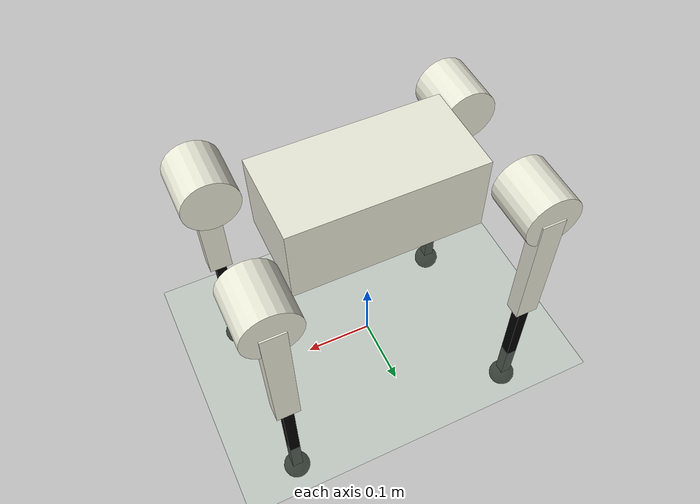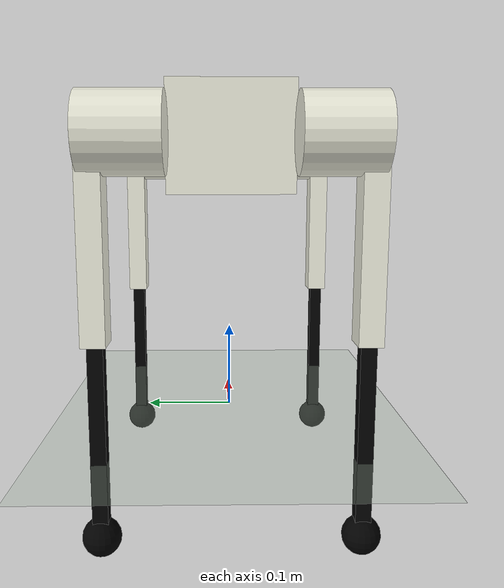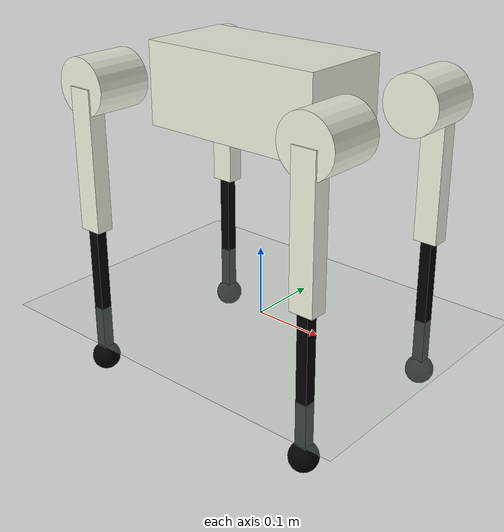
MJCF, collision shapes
<mujoco model="a1_description">
    <compiler angle="radian" meshdir="meshes/" autolimits="true"/>
    <size njmax="500" nconmax="100" />
    <option gravity='0 0 -9.806' iterations='50' solver='Newton' timestep='0.002'/>

    <default>
        <geom contype="1" conaffinity="1" friction="0.6 0.3 0.3" rgba="0.5 0.6 0.7 1" margin="0.001" group="0"/>

        <light castshadow="false" diffuse="1 1 1"/>
        <camera fovy="60"/>
        <joint damping="0.01" armature="0.01" frictionloss="0.2" />
        <default class="a1">
          <geom friction="0.6" margin="0.001"/>
          <joint axis="0 1 0" damping="2" armature="0.01" frictionloss="0.2"/>
          <position kp="100" forcerange="-33.5 33.5"/>
          <default class="abduction">
            <joint pos="0 0 0" axis="1 0 0" limited="true" range="-0.802851 0.802851" damping="1"/>
            <position ctrlrange="-0.802851 0.802851"/>
          </default>
          <default class="hip">
            <joint pos="0 0 0" axis="0 1 0" limited="true" range="-1.0472 4.18879"/>
            <position ctrlrange="-1.0472 4.18879"/>
          </default>
          <default class="knee">
            <joint pos="0 0 0" axis="0 1 0" limited="true" range="-2.69653 -0.916298" />
            <position ctrlrange="-2.69653 -0.916298"/>
          </default>
          <default class="visual">
            <geom type="mesh" contype="0" conaffinity="0" group="2" material="dark"/>
          </default>
          <default class="collision">
            <geom group="3" type="capsule"/>
            <default class="hip_left">
              <geom size="0.04 0.04" quat="1 1 0 0" type="cylinder" pos="0 0.055 0"/>
            </default>
            <default class="hip_right">
              <geom size="0.04 0.04" quat="1 1 0 0" type="cylinder" pos="0 -0.055 0"/>
            </default>
            <default class="thigh1">
              <geom size="0.015" fromto="-0.02 0 0 -0.02 0 -0.16"/>
            </default>
            <default class="thigh2">
              <geom size="0.015" fromto="0 0 0 -0.02 0 -0.1"/>
            </default>
            <default class="thigh3">
              <geom size="0.015" fromto="-0.02 0 -0.16 0 0 -0.2"/>
            </default>
            <default class="calf1">
              <geom size="0.01" fromto="0 0 0 0.02 0 -0.13"/>
            </default>
            <default class="calf2">
              <geom size="0.01" fromto="0.02 0 -0.13 0 0 -0.2"/>
            </default>
            <default class="foot">
              <geom type="sphere" size="0.02" pos="0 0 -0.2" priority="1" solimp="0.015 1 0.031"
                  condim="6" friction="0.8 0.02 0.01"/>
            </default>
          </default>
        </default>

    </default>

    <asset>
        <mesh name="trunk" file="trunk.stl" />
        <mesh name="hip" file="hip.stl" />
        <mesh name="thigh_mirror" file="thigh_mirror.stl" />
        <mesh name="calf" file="calf.stl" />
        <mesh name="thigh" file="thigh.stl" />
    </asset>

    <asset>
        <texture name="texplane" type="2d" builtin="checker" rgb1=".2 .3 .4" rgb2=".1 0.15 0.2" width="100" height="100"></texture>
        <material name="MatPlane" reflectance="0.5" texture="texplane" texrepeat="1 1" texuniform="true"></material>
        <texture type="skybox" builtin="gradient" rgb1="1.0 1.0 1.0" rgb2="1.0 1.0 1.0" width="512" height="512"/>
        <texture name="plane" type="2d" builtin="flat" rgb1="1 1 1" rgb2="1 1 1" width="512" height="512" mark="cross" markrgb="0 0 0"/>
        <material name="plane" reflectance="0.0" texture="plane" texrepeat="3 3" texuniform="true"/>
    </asset>

    <visual>
        <rgba com="0.502 1.0 0 0.5" contactforce="0.98 0.4 0.4 0.7" contactpoint="1.0 1.0 0.6 0.4"/>
        <scale com="0.2" forcewidth="0.035" contactwidth="0.10" contactheight="0.04"/>
    </visual>

    <worldbody>
        <light directional="true" diffuse=".8 .8 .8" pos="0 0 10" dir="0 0 -10"/>
        <camera name="track" mode="trackcom" pos="0 -1.3 1.6" xyaxes="1 0 0 0 0.707 0.707"/>
        <geom name="floor" pos="0 0 0" size="100 100 0.125" type="plane" material="MatPlane" condim="3" rgba="0.8 0.9 0.8 1"></geom>

        <body name="trunk" pos="0 0 0.32">
            <inertial pos="0.0127283 0.00218554 0.000514891" quat="0.00186575 0.711506 0.000389649 0.702677" mass="4.714" diaginertia="0.0648213 0.0565803 0.0169323" />
            <joint name="trunk_tx" type="slide" pos="0 0 0" axis="       1        0        0" limited="false" range="-500        500" ref="0" armature="0" damping="0" stiffness="0"></joint>
            <joint name="trunk_tz" type="slide" pos="0 0 0" axis="       0        0        1" limited="false" range="-300        300" ref="0" armature="0" damping="0" stiffness="0"></joint>
            <joint name="trunk_ty" type="slide" pos="0 0 0" axis="       0        1        0" limited="false" range="-100        200" ref="0" armature="0" damping="0" stiffness="0"></joint>
            <joint name="trunk_tilt" type="hinge" pos="0 0 0" axis="       0        0        1" limited="false" range=" -1.5708   1.5708" ref="0" armature="0" damping="0" stiffness="0"></joint>
            <joint name="trunk_list" type="hinge" pos="0 0 0" axis="       1        0        0" limited="false" range=" -1.5708   1.5708" ref="0" armature="0" damping="0" stiffness="0"></joint>
            <joint name="trunk_rotation" type="hinge" pos="0 0 0" axis="       0        1        0" limited="false" range=" -1.5708   1.5708" ref="0" armature="0" damping="0" stiffness="0"></joint>

            <geom type="mesh" contype="0" conaffinity="0" group="1" rgba="0.913725 0.913725 0.847059 1" mesh="trunk" />
            <geom size="0.1335 0.066 0.057" type="box" rgba="0.913725 0.913725 0.847059 0" />
            <geom size="0.0005 0.0005 0.0005" type="box" contype="0" conaffinity="0" group="1" rgba="0.8 0 0 0" />
            <geom size="0.0005 0.0005 0.0005" type="box" rgba="0.8 0 0 0" />
            <site name="imu" pos="0 0 0"/>
            <body name="imu_link">
                <inertial pos="0 0 0" mass="0.001"/>
                <body name="FR_hip" pos="0.183 -0.047 0">
                    <inertial pos="-0.003311 -0.000635 3.1e-05" quat="0.507528 0.506268 0.491507 0.494499" mass="0.697" diaginertia="0.000807752 0.00055293 0.000468983" />
                    <joint name="FR_hip_joint" class="abduction"/>
                    <geom quat="0 1 0 0" type="mesh" contype="0" conaffinity="0" group="1" rgba="0.913725 0.913725 0.847059 1" mesh="hip" />
                    <geom size="0.04 0.04" pos="0 -0.055 0" quat="0.707107 0.707107 0 0" type="cylinder" rgba="0.913725 0.913725 0.847059 0" />
                    <body name="FR_thigh" pos="0 -0.08505 0">
                        <inertial pos="-0.003237 0.022327 -0.027326" quat="0.999125 -0.00256393 -0.0409531 -0.00806091" mass="1.013" diaginertia="0.00555739 0.00513936 0.00133944" />
                        <joint name="FR_thigh_joint" class="hip"/>
                        <geom type="mesh" contype="0" conaffinity="0" group="1" rgba="0.913725 0.913725 0.847059 1" mesh="thigh_mirror" />
                        <geom size="0.1 0.01225 0.017" pos="0 0 -0.1" quat="0.707107 0 0.707107 0" type="box" rgba="0.913725 0.913725 0.847059 0" />
                        <body name="FR_calf" pos="0 0 -0.2">
                            <inertial pos="0.006435 0.0 -0.107388" quat="0.706886 0.017653 0.017653 0.706886" mass="0.166" diaginertia="0.00340344 0.00339393 3.54834e-05" />
                            <joint name="FR_calf_joint" class="knee"/>
                            <geom type="mesh" contype="0" conaffinity="0" group="1" rgba="0 0 0 1" mesh="calf" />
                            <geom size="0.1 0.008 0.008" pos="0 0 -0.1" quat="0.707107 0 0.707107 0" type="box" rgba="0 0 0 0" />
                            <geom size="0.01" pos="0 0 -0.2" contype="0" conaffinity="0" group="1" rgba="0 0 0 1" />
                            <geom size="0.02" pos="0 0 -0.2" rgba="0 0 0 1" />
                            <body name="FR_toe" pos="0 0 -0.3">
                                <inertial mass="0.06" pos="0 0 0"/>
                            </body>
                        </body>
                    </body>
                </body>
                <body name="FL_hip" pos="0.183 0.047 0">
                    <inertial pos="-0.003311 0.000635 3.1e-05" quat="0.494499 0.491507 0.506268 0.507528" mass="0.697" diaginertia="0.000807752 0.00055293 0.000468983" />
                    <joint name="FL_hip_joint" class="abduction"/>
                    <geom type="mesh" contype="0" conaffinity="0" group="1" rgba="0.913725 0.913725 0.847059 1" mesh="hip" />
                    <geom size="0.04 0.04" pos="0 0.055 0" quat="0.707107 0.707107 0 0" type="cylinder" rgba="0.913725 0.913725 0.847059 0" />
                    <body name="FL_thigh" pos="0 0.08505 0">
                        <inertial pos="-0.003237 -0.022327 -0.027326" quat="0.999125 0.00256393 -0.0409531 0.00806091" mass="1.013" diaginertia="0.00555739 0.00513936 0.00133944" />
                        <joint name="FL_thigh_joint" class="hip" />
                        <geom type="mesh" contype="0" conaffinity="0" group="1" rgba="0.913725 0.913725 0.847059 1" mesh="thigh" />
                        <geom size="0.1 0.01225 0.017" pos="0 0 -0.1" quat="0.707107 0 0.707107 0" type="box" rgba="0.913725 0.913725 0.847059 0" />
                        <body name="FL_calf" pos="0 0 -0.2">
                            <inertial pos="0.006435 0.0 -0.107388" quat="0.706886 0.017653 0.017653 0.706886" mass="0.166" diaginertia="0.00340344 0.00339393 3.54834e-05" />
                            <joint name="FL_calf_joint" class="knee" />
                            <geom type="mesh" contype="0" conaffinity="0" group="1" rgba="0 0 0 1" mesh="calf" />
                            <geom size="0.1 0.008 0.008" pos="0 0 -0.1" quat="0.707107 0 0.707107 0" type="box" rgba="0 0 0 0" />
                            <geom size="0.01" pos="0 0 -0.2" contype="0" conaffinity="0" group="1" rgba="0 0 0 1" />
                            <geom size="0.02" pos="0 0 -0.2" rgba="0 0 0 1" />
                            <body name="FL_toe" pos="0 0 -0.3">
                                <inertial mass="0.06" pos="0 0 0"/>
                            </body>
                        </body>
                    </body>
                </body>
                <body name="RR_hip" pos="-0.183 -0.047 0">
                    <inertial pos="0.003311 -0.000635 3.1e-05" quat="0.491507 0.494499 0.507528 0.506268" mass="0.697" diaginertia="0.000807752 0.00055293 0.000468983" />
                    <joint name="RR_hip_joint" class="abduction" />
                    <geom quat="0 0 0 -1" type="mesh" contype="0" conaffinity="0" group="1" rgba="0.913725 0.913725 0.847059 1" mesh="hip" />
                    <geom size="0.04 0.04" pos="0 -0.055 0" quat="0.707107 0.707107 0 0" type="cylinder" rgba="0.913725 0.913725 0.847059 0" />
                    <body name="RR_thigh" pos="0 -0.08505 0">
                        <inertial pos="-0.003237 0.022327 -0.027326" quat="0.999125 -0.00256393 -0.0409531 -0.00806091" mass="1.013" diaginertia="0.00555739 0.00513936 0.00133944" />
                        <joint name="RR_thigh_joint" class="hip" />
                        <geom type="mesh" contype="0" conaffinity="0" group="1" rgba="0.913725 0.913725 0.847059 1" mesh="thigh_mirror" />
                        <geom size="0.1 0.01225 0.017" pos="0 0 -0.1" quat="0.707107 0 0.707107 0" type="box" rgba="0.913725 0.913725 0.847059 0" />
                        <body name="RR_calf" pos="0 0 -0.2">
                            <inertial pos="0.006435 0.0 -0.107388" quat="0.706886 0.017653 0.017653 0.706886" mass="0.166" diaginertia="0.00340344 0.00339393 3.54834e-05" />
                            <joint name="RR_calf_joint" class="knee" />
                            <geom type="mesh" contype="0" conaffinity="0" group="1" rgba="0 0 0 1" mesh="calf" />
                            <geom size="0.1 0.008 0.008" pos="0 0 -0.1" quat="0.707107 0 0.707107 0" type="box" rgba="0 0 0 0" />
                            <geom size="0.01" pos="0 0 -0.2" contype="0" conaffinity="0" group="1" rgba="0 0 0 1" />
                            <geom size="0.02" pos="0 0 -0.2" rgba="0 0 0 1" />
                            <body name="RR_toe" pos="0 0 -0.3">
                                <inertial mass="0.06" pos="0 0 0"/>
                            </body>
                        </body>
                    </body>
                </body>
                <body name="RL_hip" pos="-0.183 0.047 0">
                    <inertial pos="0.003311 0.000635 3.1e-05" quat="0.506268 0.507528 0.494499 0.491507" mass="0.697" diaginertia="0.000807752 0.00055293 0.000468983" />
                    <joint name="RL_hip_joint" class="abduction" />
                    <geom quat="0 0 1 0" type="mesh" contype="0" conaffinity="0" group="1" rgba="0.913725 0.913725 0.847059 1" mesh="hip" />
                    <geom size="0.04 0.04" pos="0 0.055 0" quat="0.707107 0.707107 0 0" type="cylinder" rgba="0.913725 0.913725 0.847059 0" />
                    <body name="RL_thigh" pos="0 0.08505 0">
                        <inertial pos="-0.003237 -0.022327 -0.027326" quat="0.999125 0.00256393 -0.0409531 0.00806091" mass="1.013" diaginertia="0.00555739 0.00513936 0.00133944" />
                        <joint name="RL_thigh_joint" class="hip" />
                        <geom type="mesh" contype="0" conaffinity="0" group="1" rgba="0.913725 0.913725 0.847059 1" mesh="thigh" />
                        <geom size="0.1 0.01225 0.017" pos="0 0 -0.1" quat="0.707107 0 0.707107 0" type="box" rgba="0.913725 0.913725 0.847059 0" />
                        <body name="RL_calf" pos="0 0 -0.2">
                            <inertial pos="0.006435 0.0 -0.107388" quat="0.706886 0.017653 0.017653 0.706886" mass="0.166" diaginertia="0.00340344 0.00339393 3.54834e-05" />
                            <joint name="RL_calf_joint" class="knee" />
                            <geom type="mesh" contype="0" conaffinity="0" group="1" rgba="0 0 0 1" mesh="calf" />
                            <geom size="0.1 0.008 0.008" pos="0 0 -0.1" quat="0.707107 0 0.707107 0" type="box" rgba="0 0 0 0" />
                            <geom size="0.01" pos="0 0 -0.2" contype="0" conaffinity="0" group="1" rgba="0 0 0 1" />
                            <geom size="0.02" pos="0 0 -0.2" rgba="0 0 0 1" />
                            <body name="RL_toe" pos="0 0 -0.3">
                                <inertial mass="0.06" pos="0 0 0"/>
                            </body>
                        </body>
                    </body>
                </body>
            </body>
        </body>
    </worldbody>
    <actuator>
        <position class="abduction" name="FR_hip" joint="FR_hip_joint"/>
        <position class="hip" name="FR_thigh" joint="FR_thigh_joint"/>
        <position class="knee" name="FR_calf" joint="FR_calf_joint"/>
        <position class="abduction" name="FL_hip" joint="FL_hip_joint"/>
        <position class="hip" name="FL_thigh" joint="FL_thigh_joint"/>
        <position class="knee" name="FL_calf" joint="FL_calf_joint"/>
        <position class="abduction" name="RR_hip" joint="RR_hip_joint"/>
        <position class="hip" name="RR_thigh" joint="RR_thigh_joint"/>
        <position class="knee" name="RR_calf" joint="RR_calf_joint"/>
        <position class="abduction" name="RL_hip" joint="RL_hip_joint"/>
        <position class="hip" name="RL_thigh" joint="RL_thigh_joint"/>
        <position class="knee" name="RL_calf" joint="RL_calf_joint"/>
    </actuator>

    <sensor>

        <jointpos name="FR_hip_pos"     joint="FR_hip_joint"/>
        <jointpos name="FR_thigh_pos"   joint="FR_thigh_joint"/>
        <jointpos name="FR_calf_pos"    joint="FR_calf_joint"/>
        <jointpos name="FL_hip_pos"     joint="FL_hip_joint"/>
        <jointpos name="FL_thigh_pos"   joint="FL_thigh_joint"/>
        <jointpos name="FL_calf_pos"    joint="FL_calf_joint"/>
        <jointpos name="RR_hip_pos"     joint="RR_hip_joint"/>
        <jointpos name="RR_thigh_pos"   joint="RR_thigh_joint"/>
        <jointpos name="RR_calf_pos"    joint="RR_calf_joint" />
        <jointpos name="RL_hip_pos"     joint="RL_hip_joint"/>
        <jointpos name="RL_thigh_pos"   joint="RL_thigh_joint"/>
        <jointpos name="RL_calf_pos"    joint="RL_calf_joint"/>

        <jointvel name="FR_hip_vel"     joint="FR_hip_joint"/>
        <jointvel name="FR_thigh_vel"   joint="FR_thigh_joint"/>
        <jointvel name="FR_calf_vel"    joint="FR_calf_joint"/>
        <jointvel name="FL_hip_vel"     joint="FL_hip_joint"/>
        <jointvel name="FL_thigh_vel"   joint="FL_thigh_joint"/>
        <jointvel name="FL_calf_vel"    joint="FL_calf_joint"/>
        <jointvel name="RR_hip_vel"     joint="RR_hip_joint"/>
        <jointvel name="RR_thigh_vel"   joint="RR_thigh_joint"/>
        <jointvel name="RR_calf_vel"    joint="RR_calf_joint" />
        <jointvel name="RL_hip_vel"     joint="RL_hip_joint"/>
        <jointvel name="RL_thigh_vel"   joint="RL_thigh_joint"/>
        <jointvel name="RL_calf_vel"    joint="RL_calf_joint"/>

        <accelerometer name="Body_Acc" site="imu"/>

        <gyro name="Body_Gyro" site="imu"/>

        <framepos name="Body_Pos" objtype="site" objname="imu"/>

        <framequat name="Body_Quat" objtype="site" objname="imu"/>

    </sensor>

</mujoco>
